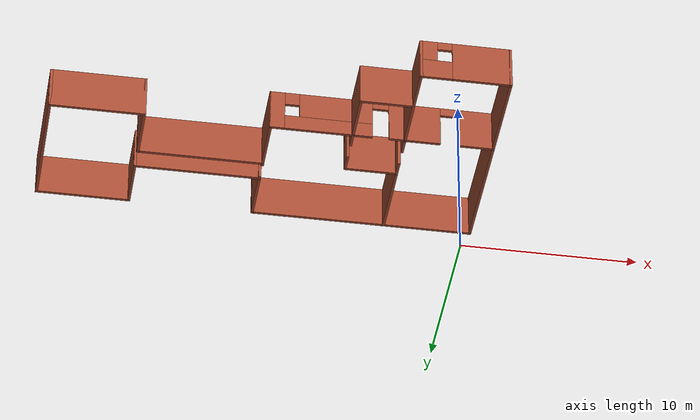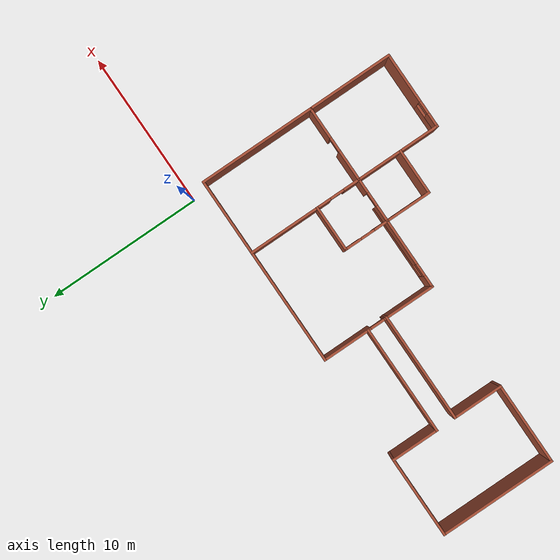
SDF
<?xml version='1.0'?>
<sdf version='1.6'>
  <model name='House3'>
    <pose frame=''>-11.7575 -7.45 0 0 -0 0</pose>
    <link name='Wall_0'>
      <collision name='Wall_0_Collision'>
        <geometry>
          <box>
            <size>7.5 0.15 2.5</size>
          </box>
        </geometry>
        <pose frame=''>0 0 1.25 0 -0 0</pose>
      </collision>
      <visual name='Wall_0_Visual'>
        <pose frame=''>0 0 1.25 0 -0 0</pose>
        <geometry>
          <box>
            <size>7.5 0.15 2.5</size>
          </box>
        </geometry>
        <material>
          <script>
            <uri>file://media/materials/scripts/gazebo.material</uri>
            <name>Gazebo/Bricks</name>
          </script>
          <ambient>1 1 1 1</ambient>
        </material>
        <meta>
          <layer>0</layer>
        </meta>
      </visual>
      <pose frame=''>12.0775 2.675 0 0 -0 -1.5708</pose>
    </link>
    <link name='Wall_10'>
      <pose frame=''>3.55254 -1 0 0 -0 0</pose>
      <visual name='Wall_10_Visual_0'>
        <pose frame=''>-3.3325 0 1.25 0 -0 0</pose>
        <geometry>
          <box>
            <size>0.835 0.15 2.5</size>
          </box>
        </geometry>
        <material>
          <script>
            <uri>file://media/materials/scripts/gazebo.material</uri>
            <name>Gazebo/Bricks</name>
          </script>
          <ambient>1 1 1 1</ambient>
        </material>
        <meta>
          <layer>0</layer>
        </meta>
      </visual>
      <collision name='Wall_10_Collision_0'>
        <geometry>
          <box>
            <size>0.835 0.15 2.5</size>
          </box>
        </geometry>
        <pose frame=''>-3.3325 0 1.25 0 -0 0</pose>
      </collision>
      <visual name='Wall_10_Visual_1'>
        <pose frame=''>3.2675 0 1.25 0 -0 0</pose>
        <geometry>
          <box>
            <size>0.965 0.15 2.5</size>
          </box>
        </geometry>
        <material>
          <script>
            <uri>file://media/materials/scripts/gazebo.material</uri>
            <name>Gazebo/Bricks</name>
          </script>
          <ambient>1 1 1 1</ambient>
        </material>
        <meta>
          <layer>0</layer>
        </meta>
      </visual>
      <collision name='Wall_10_Collision_1'>
        <geometry>
          <box>
            <size>0.965 0.15 2.5</size>
          </box>
        </geometry>
        <pose frame=''>3.2675 0 1.25 0 -0 0</pose>
      </collision>
      <visual name='Wall_10_Visual_2'>
        <pose frame=''>-0.515 0 0.45 0 -0 0</pose>
        <geometry>
          <box>
            <size>4.8 0.15 0.9</size>
          </box>
        </geometry>
        <material>
          <script>
            <uri>file://media/materials/scripts/gazebo.material</uri>
            <name>Gazebo/Bricks</name>
          </script>
          <ambient>1 1 1 1</ambient>
        </material>
        <meta>
          <layer>0</layer>
        </meta>
      </visual>
      <collision name='Wall_10_Collision_2'>
        <geometry>
          <box>
            <size>4.8 0.15 0.9</size>
          </box>
        </geometry>
        <pose frame=''>-0.515 0 0.45 0 -0 0</pose>
      </collision>
      <visual name='Wall_10_Visual_3'>
        <pose frame=''>-0.115 0 1.7 0 -0 0</pose>
        <geometry>
          <box>
            <size>4 0.15 1.6</size>
          </box>
        </geometry>
        <material>
          <script>
            <uri>file://media/materials/scripts/gazebo.material</uri>
            <name>Gazebo/Bricks</name>
          </script>
          <ambient>1 1 1 1</ambient>
        </material>
        <meta>
          <layer>0</layer>
        </meta>
      </visual>
      <collision name='Wall_10_Collision_3'>
        <geometry>
          <box>
            <size>4 0.15 1.6</size>
          </box>
        </geometry>
        <pose frame=''>-0.115 0 1.7 0 -0 0</pose>
      </collision>
      <visual name='Wall_10_Visual_4'>
        <pose frame=''>-2.515 0 2.1 0 -0 0</pose>
        <geometry>
          <box>
            <size>0.8 0.15 0.8</size>
          </box>
        </geometry>
        <material>
          <script>
            <uri>file://media/materials/scripts/gazebo.material</uri>
            <name>Gazebo/Bricks</name>
          </script>
          <ambient>1 1 1 1</ambient>
        </material>
        <meta>
          <layer>0</layer>
        </meta>
      </visual>
      <collision name='Wall_10_Collision_4'>
        <geometry>
          <box>
            <size>0.8 0.15 0.8</size>
          </box>
        </geometry>
        <pose frame=''>-2.515 0 2.1 0 -0 0</pose>
      </collision>
      <visual name='Wall_10_Visual_5'>
        <pose frame=''>2.335 0 2.25 0 -0 0</pose>
        <geometry>
          <box>
            <size>0.9 0.15 0.5</size>
          </box>
        </geometry>
        <material>
          <script>
            <uri>file://media/materials/scripts/gazebo.material</uri>
            <name>Gazebo/Bricks</name>
          </script>
          <ambient>1 1 1 1</ambient>
        </material>
        <meta>
          <layer>0</layer>
        </meta>
      </visual>
      <collision name='Wall_10_Collision_5'>
        <geometry>
          <box>
            <size>0.9 0.15 0.5</size>
          </box>
        </geometry>
        <pose frame=''>2.335 0 2.25 0 -0 0</pose>
      </collision>
    </link>
    <link name='Wall_14'>
      <pose frame=''>7.22753 0.425 0 0 -0 1.5708</pose>
      <visual name='Wall_14_Visual_0'>
        <pose frame=''>-0.9425 0 1.25 0 -0 0</pose>
        <geometry>
          <box>
            <size>1.115 0.15 2.5</size>
          </box>
        </geometry>
        <material>
          <script>
            <uri>file://media/materials/scripts/gazebo.material</uri>
            <name>Gazebo/Bricks</name>
          </script>
          <ambient>1 1 1 1</ambient>
        </material>
        <meta>
          <layer>0</layer>
        </meta>
      </visual>
      <collision name='Wall_14_Collision_0'>
        <geometry>
          <box>
            <size>1.115 0.15 2.5</size>
          </box>
        </geometry>
        <pose frame=''>-0.9425 0 1.25 0 -0 0</pose>
      </collision>
      <visual name='Wall_14_Visual_1'>
        <pose frame=''>1.0075 0 1.25 0 -0 0</pose>
        <geometry>
          <box>
            <size>0.985 0.15 2.5</size>
          </box>
        </geometry>
        <material>
          <script>
            <uri>file://media/materials/scripts/gazebo.material</uri>
            <name>Gazebo/Bricks</name>
          </script>
          <ambient>1 1 1 1</ambient>
        </material>
        <meta>
          <layer>0</layer>
        </meta>
      </visual>
      <collision name='Wall_14_Collision_1'>
        <geometry>
          <box>
            <size>0.985 0.15 2.5</size>
          </box>
        </geometry>
        <pose frame=''>1.0075 0 1.25 0 -0 0</pose>
      </collision>
      <visual name='Wall_14_Visual_2'>
        <pose frame=''>0.065 0 2.25 0 -0 0</pose>
        <geometry>
          <box>
            <size>0.9 0.15 0.5</size>
          </box>
        </geometry>
        <material>
          <script>
            <uri>file://media/materials/scripts/gazebo.material</uri>
            <name>Gazebo/Bricks</name>
          </script>
          <ambient>1 1 1 1</ambient>
        </material>
        <meta>
          <layer>0</layer>
        </meta>
      </visual>
      <collision name='Wall_14_Collision_2'>
        <geometry>
          <box>
            <size>0.9 0.15 0.5</size>
          </box>
        </geometry>
        <pose frame=''>0.065 0 2.25 0 -0 0</pose>
      </collision>
    </link>
    <link name='Wall_17'>
      <collision name='Wall_17_Collision'>
        <geometry>
          <box>
            <size>3 0.15 2.5</size>
          </box>
        </geometry>
        <pose frame=''>0 0 1.25 0 -0 0</pose>
      </collision>
      <visual name='Wall_17_Visual'>
        <pose frame=''>0 0 1.25 0 -0 0</pose>
        <geometry>
          <box>
            <size>3 0.15 2.5</size>
          </box>
        </geometry>
        <material>
          <script>
            <uri>file://media/materials/scripts/gazebo.material</uri>
            <name>Gazebo/Bricks</name>
          </script>
          <ambient>1 1 1 1</ambient>
        </material>
        <meta>
          <layer>0</layer>
        </meta>
      </visual>
      <pose frame=''>5.80253 1.85 0 0 -0 3.14159</pose>
    </link>
    <link name='Wall_18'>
      <pose frame=''>4.37753 0.425 0 0 -0 -1.5708</pose>
      <visual name='Wall_18_Visual_0'>
        <pose frame=''>-0.9325 0 1.25 0 -0 0</pose>
        <geometry>
          <box>
            <size>1.135 0.15 2.5</size>
          </box>
        </geometry>
        <material>
          <script>
            <uri>file://media/materials/scripts/gazebo.material</uri>
            <name>Gazebo/Bricks</name>
          </script>
          <ambient>1 1 1 1</ambient>
        </material>
        <meta>
          <layer>0</layer>
        </meta>
      </visual>
      <collision name='Wall_18_Collision_0'>
        <geometry>
          <box>
            <size>1.135 0.15 2.5</size>
          </box>
        </geometry>
        <pose frame=''>-0.9325 0 1.25 0 -0 0</pose>
      </collision>
      <visual name='Wall_18_Visual_1'>
        <pose frame=''>1.0175 0 1.25 0 -0 0</pose>
        <geometry>
          <box>
            <size>0.965 0.15 2.5</size>
          </box>
        </geometry>
        <material>
          <script>
            <uri>file://media/materials/scripts/gazebo.material</uri>
            <name>Gazebo/Bricks</name>
          </script>
          <ambient>1 1 1 1</ambient>
        </material>
        <meta>
          <layer>0</layer>
        </meta>
      </visual>
      <collision name='Wall_18_Collision_1'>
        <geometry>
          <box>
            <size>0.965 0.15 2.5</size>
          </box>
        </geometry>
        <pose frame=''>1.0175 0 1.25 0 -0 0</pose>
      </collision>
      <visual name='Wall_18_Visual_2'>
        <pose frame=''>0.085 0 2.25 0 -0 0</pose>
        <geometry>
          <box>
            <size>0.9 0.15 0.5</size>
          </box>
        </geometry>
        <material>
          <script>
            <uri>file://media/materials/scripts/gazebo.material</uri>
            <name>Gazebo/Bricks</name>
          </script>
          <ambient>1 1 1 1</ambient>
        </material>
        <meta>
          <layer>0</layer>
        </meta>
      </visual>
      <collision name='Wall_18_Collision_2'>
        <geometry>
          <box>
            <size>0.9 0.15 0.5</size>
          </box>
        </geometry>
        <pose frame=''>0.085 0 2.25 0 -0 0</pose>
      </collision>
    </link>
    <link name='Wall_2'>
      <collision name='Wall_2_Collision'>
        <geometry>
          <box>
            <size>5.5 0.15 2.5</size>
          </box>
        </geometry>
        <pose frame=''>0 0 1.25 0 -0 0</pose>
      </collision>
      <visual name='Wall_2_Visual'>
        <pose frame=''>0 0 1.25 0 -0 0</pose>
        <geometry>
          <box>
            <size>5.5 0.15 2.5</size>
          </box>
        </geometry>
        <material>
          <script>
            <uri>file://media/materials/scripts/gazebo.material</uri>
            <name>Gazebo/Bricks</name>
          </script>
          <ambient>1 1 1 1</ambient>
        </material>
        <meta>
          <layer>0</layer>
        </meta>
      </visual>
      <pose frame=''>12.0775 -3.675 0 0 -0 -1.5708</pose>
    </link>
    <link name='Wall_20'>
      <collision name='Wall_20_Collision'>
        <geometry>
          <box>
            <size>3 0.15 2.5</size>
          </box>
        </geometry>
        <pose frame=''>0 0 1.25 0 -0 0</pose>
      </collision>
      <visual name='Wall_20_Visual'>
        <pose frame=''>0 0 1.25 0 -0 0</pose>
        <geometry>
          <box>
            <size>3 0.15 2.5</size>
          </box>
        </geometry>
        <material>
          <script>
            <uri>file://media/materials/scripts/gazebo.material</uri>
            <name>Gazebo/Bricks</name>
          </script>
          <ambient>1 1 1 1</ambient>
        </material>
        <meta>
          <layer>0</layer>
        </meta>
      </visual>
      <pose frame=''>4.37753 -2.425 0 0 -0 -1.5708</pose>
    </link>
    <link name='Wall_22'>
      <collision name='Wall_22_Collision'>
        <geometry>
          <box>
            <size>3 0.15 2.5</size>
          </box>
        </geometry>
        <pose frame=''>0 0 1.25 0 -0 0</pose>
      </collision>
      <visual name='Wall_22_Visual'>
        <pose frame=''>0 0 1.25 0 -0 0</pose>
        <geometry>
          <box>
            <size>3 0.15 2.5</size>
          </box>
        </geometry>
        <material>
          <script>
            <uri>file://media/materials/scripts/gazebo.material</uri>
            <name>Gazebo/Bricks</name>
          </script>
          <ambient>1 1 1 1</ambient>
        </material>
        <meta>
          <layer>0</layer>
        </meta>
      </visual>
      <pose frame=''>5.80253 -3.85 0 0 -0 0</pose>
    </link>
    <link name='Wall_23'>
      <collision name='Wall_23_Collision'>
        <geometry>
          <box>
            <size>3 0.15 2.5</size>
          </box>
        </geometry>
        <pose frame=''>0 0 1.25 0 -0 0</pose>
      </collision>
      <visual name='Wall_23_Visual'>
        <pose frame=''>0 0 1.25 0 -0 0</pose>
        <geometry>
          <box>
            <size>3 0.15 2.5</size>
          </box>
        </geometry>
        <material>
          <script>
            <uri>file://media/materials/scripts/gazebo.material</uri>
            <name>Gazebo/Bricks</name>
          </script>
          <ambient>1 1 1 1</ambient>
        </material>
        <meta>
          <layer>0</layer>
        </meta>
      </visual>
      <pose frame=''>7.22753 -2.425 0 0 -0 1.5708</pose>
    </link>
    <link name='Wall_25'>
      <collision name='Wall_25_Collision'>
        <geometry>
          <box>
            <size>4.65 0.15 2.5</size>
          </box>
        </geometry>
        <pose frame=''>0 0 1.25 0 -0 0</pose>
      </collision>
      <visual name='Wall_25_Visual'>
        <pose frame=''>0 0 1.25 0 -0 0</pose>
        <geometry>
          <box>
            <size>4.65 0.15 2.5</size>
          </box>
        </geometry>
        <material>
          <script>
            <uri>file://media/materials/scripts/gazebo.material</uri>
            <name>Gazebo/Bricks</name>
          </script>
          <ambient>1 1 1 1</ambient>
        </material>
        <meta>
          <layer>0</layer>
        </meta>
      </visual>
      <pose frame=''>7.22753 4.1 0 0 -0 1.5708</pose>
    </link>
    <link name='Wall_29'>
      <pose frame=''>9.65254 -6.35 0 0 -0 3.14159</pose>
      <visual name='Wall_29_Visual_0'>
        <pose frame=''>-0.8825 0 1.25 0 -0 0</pose>
        <geometry>
          <box>
            <size>3.235 0.15 2.5</size>
          </box>
        </geometry>
        <material>
          <script>
            <uri>file://media/materials/scripts/gazebo.material</uri>
            <name>Gazebo/Bricks</name>
          </script>
          <ambient>1 1 1 1</ambient>
        </material>
        <meta>
          <layer>0</layer>
        </meta>
      </visual>
      <collision name='Wall_29_Collision_0'>
        <geometry>
          <box>
            <size>3.235 0.15 2.5</size>
          </box>
        </geometry>
        <pose frame=''>-0.8825 0 1.25 0 -0 0</pose>
      </collision>
      <visual name='Wall_29_Visual_1'>
        <pose frame=''>1.6175 0 0.6 0 -0 0</pose>
        <geometry>
          <box>
            <size>1.765 0.15 1.2</size>
          </box>
        </geometry>
        <material>
          <script>
            <uri>file://media/materials/scripts/gazebo.material</uri>
            <name>Gazebo/Bricks</name>
          </script>
          <ambient>1 1 1 1</ambient>
        </material>
        <meta>
          <layer>0</layer>
        </meta>
      </visual>
      <collision name='Wall_29_Collision_1'>
        <geometry>
          <box>
            <size>1.765 0.15 1.2</size>
          </box>
        </geometry>
        <pose frame=''>1.6175 0 0.6 0 -0 0</pose>
      </collision>
      <visual name='Wall_29_Visual_2'>
        <pose frame=''>2.0175 0 1.85 0 -0 0</pose>
        <geometry>
          <box>
            <size>0.965 0.15 1.3</size>
          </box>
        </geometry>
        <material>
          <script>
            <uri>file://media/materials/scripts/gazebo.material</uri>
            <name>Gazebo/Bricks</name>
          </script>
          <ambient>1 1 1 1</ambient>
        </material>
        <meta>
          <layer>0</layer>
        </meta>
      </visual>
      <collision name='Wall_29_Collision_2'>
        <geometry>
          <box>
            <size>0.965 0.15 1.3</size>
          </box>
        </geometry>
        <pose frame=''>2.0175 0 1.85 0 -0 0</pose>
      </collision>
      <visual name='Wall_29_Visual_3'>
        <pose frame=''>1.135 0 2.25 0 -0 0</pose>
        <geometry>
          <box>
            <size>0.8 0.15 0.5</size>
          </box>
        </geometry>
        <material>
          <script>
            <uri>file://media/materials/scripts/gazebo.material</uri>
            <name>Gazebo/Bricks</name>
          </script>
          <ambient>1 1 1 1</ambient>
        </material>
        <meta>
          <layer>0</layer>
        </meta>
      </visual>
      <collision name='Wall_29_Collision_3'>
        <geometry>
          <box>
            <size>0.8 0.15 0.5</size>
          </box>
        </geometry>
        <pose frame=''>1.135 0 2.25 0 -0 0</pose>
      </collision>
    </link>
    <link name='Wall_32'>
      <collision name='Wall_32_Collision'>
        <geometry>
          <box>
            <size>2.65 0.15 2.5</size>
          </box>
        </geometry>
        <pose frame=''>0 0 1.25 0 -0 0</pose>
      </collision>
      <visual name='Wall_32_Visual'>
        <pose frame=''>0 0 1.25 0 -0 0</pose>
        <geometry>
          <box>
            <size>2.65 0.15 2.5</size>
          </box>
        </geometry>
        <material>
          <script>
            <uri>file://media/materials/scripts/gazebo.material</uri>
            <name>Gazebo/Bricks</name>
          </script>
          <ambient>1 1 1 1</ambient>
        </material>
        <meta>
          <layer>0</layer>
        </meta>
      </visual>
      <pose frame=''>7.22753 -5.1 0 0 -0 1.5708</pose>
    </link>
    <link name='Wall_35'>
      <pose frame=''>9.65254 -1 0 0 -0 0</pose>
      <visual name='Wall_35_Visual_0'>
        <pose frame=''>-1.48755 0 1.25 0 -0 0</pose>
        <geometry>
          <box>
            <size>2.02489 0.15 2.5</size>
          </box>
        </geometry>
        <material>
          <script>
            <uri>file://media/materials/scripts/gazebo.material</uri>
            <name>Gazebo/Bricks</name>
          </script>
          <ambient>1 1 1 1</ambient>
        </material>
        <meta>
          <layer>0</layer>
        </meta>
      </visual>
      <collision name='Wall_35_Collision_0'>
        <geometry>
          <box>
            <size>2.02489 0.15 2.5</size>
          </box>
        </geometry>
        <pose frame=''>-1.48755 0 1.25 0 -0 0</pose>
      </collision>
      <visual name='Wall_35_Visual_1'>
        <pose frame=''>1.46245 0 1.25 0 -0 0</pose>
        <geometry>
          <box>
            <size>2.07511 0.15 2.5</size>
          </box>
        </geometry>
        <material>
          <script>
            <uri>file://media/materials/scripts/gazebo.material</uri>
            <name>Gazebo/Bricks</name>
          </script>
          <ambient>1 1 1 1</ambient>
        </material>
        <meta>
          <layer>0</layer>
        </meta>
      </visual>
      <collision name='Wall_35_Collision_1'>
        <geometry>
          <box>
            <size>2.07511 0.15 2.5</size>
          </box>
        </geometry>
        <pose frame=''>1.46245 0 1.25 0 -0 0</pose>
      </collision>
      <visual name='Wall_35_Visual_2'>
        <pose frame=''>-0.025107 0 2.25 0 -0 0</pose>
        <geometry>
          <box>
            <size>0.9 0.15 0.5</size>
          </box>
        </geometry>
        <material>
          <script>
            <uri>file://media/materials/scripts/gazebo.material</uri>
            <name>Gazebo/Bricks</name>
          </script>
          <ambient>1 1 1 1</ambient>
        </material>
        <meta>
          <layer>0</layer>
        </meta>
      </visual>
      <collision name='Wall_35_Collision_2'>
        <geometry>
          <box>
            <size>0.9 0.15 0.5</size>
          </box>
        </geometry>
        <pose frame=''>-0.025107 0 2.25 0 -0 0</pose>
      </collision>
    </link>
    <link name='Wall_37'>
      <collision name='Wall_37_Collision'>
        <geometry>
          <box>
            <size>7 0.15 2.5</size>
          </box>
        </geometry>
        <pose frame=''>0 0 1.25 0 -0 0</pose>
      </collision>
      <visual name='Wall_37_Visual'>
        <pose frame=''>0 0 1.25 0 -0 0</pose>
        <geometry>
          <box>
            <size>7 0.15 2.5</size>
          </box>
        </geometry>
        <material>
          <script>
            <uri>file://media/materials/scripts/gazebo.material</uri>
            <name>Gazebo/Bricks</name>
          </script>
          <ambient>1 1 1 1</ambient>
        </material>
        <meta>
          <layer>0</layer>
        </meta>
      </visual>
      <pose frame=''>-3.55247 3.379 0 0 -0 3.14159</pose>
    </link>
    <link name='Wall_39'>
      <collision name='Wall_39_Collision'>
        <geometry>
          <box>
            <size>7 0.15 2.5</size>
          </box>
        </geometry>
        <pose frame=''>0 0 1.25 0 -0 0</pose>
      </collision>
      <visual name='Wall_39_Visual'>
        <pose frame=''>0 0 1.25 0 -0 0</pose>
        <geometry>
          <box>
            <size>7 0.15 2.5</size>
          </box>
        </geometry>
        <material>
          <script>
            <uri>file://media/materials/scripts/gazebo.material</uri>
            <name>Gazebo/Bricks</name>
          </script>
          <ambient>1 1 1 1</ambient>
        </material>
        <meta>
          <layer>0</layer>
        </meta>
      </visual>
      <pose frame=''>-3.53946 2.117 0 0 -0 3.14159</pose>
    </link>
    <link name='Wall_4'>
      <collision name='Wall_4_Collision'>
        <geometry>
          <box>
            <size>5 0.15 2.5</size>
          </box>
        </geometry>
        <pose frame=''>0 0 1.25 0 -0 0</pose>
      </collision>
      <visual name='Wall_4_Visual'>
        <pose frame=''>0 0 1.25 0 -0 0</pose>
        <geometry>
          <box>
            <size>5 0.15 2.5</size>
          </box>
        </geometry>
        <material>
          <script>
            <uri>file://media/materials/scripts/gazebo.material</uri>
            <name>Gazebo/Bricks</name>
          </script>
          <ambient>1 1 1 1</ambient>
        </material>
        <meta>
          <layer>0</layer>
        </meta>
      </visual>
      <pose frame=''>9.65254 6.35 0 0 -0 3.14159</pose>
    </link>
    <link name='Wall_41'>
      <collision name='Wall_41_Collision'>
        <geometry>
          <box>
            <size>3.121 0.15 2.5</size>
          </box>
        </geometry>
        <pose frame=''>0 0 1.25 0 -0 0</pose>
      </collision>
      <visual name='Wall_41_Visual'>
        <pose frame=''>0 0 1.25 0 -0 0</pose>
        <geometry>
          <box>
            <size>3.121 0.15 2.5</size>
          </box>
        </geometry>
        <material>
          <script>
            <uri>file://media/materials/scripts/gazebo.material</uri>
            <name>Gazebo/Bricks</name>
          </script>
          <ambient>1 1 1 1</ambient>
        </material>
        <meta>
          <layer>0</layer>
        </meta>
      </visual>
      <pose frame=''>-6.97747 4.8645 0 0 -0 1.5708</pose>
    </link>
    <link name='Wall_44'>
      <collision name='Wall_44_Collision'>
        <geometry>
          <box>
            <size>3.267 0.15 2.5</size>
          </box>
        </geometry>
        <pose frame=''>0 0 1.25 0 -0 0</pose>
      </collision>
      <visual name='Wall_44_Visual'>
        <pose frame=''>0 0 1.25 0 -0 0</pose>
        <geometry>
          <box>
            <size>3.267 0.15 2.5</size>
          </box>
        </geometry>
        <material>
          <script>
            <uri>file://media/materials/scripts/gazebo.material</uri>
            <name>Gazebo/Bricks</name>
          </script>
          <ambient>1 1 1 1</ambient>
        </material>
        <meta>
          <layer>0</layer>
        </meta>
      </visual>
      <pose frame=''>-6.96446 0.5585 0 0 -0 -1.5708</pose>
    </link>
    <link name='Wall_46'>
      <collision name='Wall_46_Collision'>
        <geometry>
          <box>
            <size>5.25 0.15 2.5</size>
          </box>
        </geometry>
        <pose frame=''>0 0 1.25 0 -0 0</pose>
      </collision>
      <visual name='Wall_46_Visual'>
        <pose frame=''>0 0 1.25 0 -0 0</pose>
        <geometry>
          <box>
            <size>5.25 0.15 2.5</size>
          </box>
        </geometry>
        <material>
          <script>
            <uri>file://media/materials/scripts/gazebo.material</uri>
            <name>Gazebo/Bricks</name>
          </script>
          <ambient>1 1 1 1</ambient>
        </material>
        <meta>
          <layer>0</layer>
        </meta>
      </visual>
      <pose frame=''>-9.52746 6.35 0 0 -0 3.14159</pose>
    </link>
    <link name='Wall_47'>
      <collision name='Wall_47_Collision'>
        <geometry>
          <box>
            <size>7.5 0.15 2.5</size>
          </box>
        </geometry>
        <pose frame=''>0 0 1.25 0 -0 0</pose>
      </collision>
      <visual name='Wall_47_Visual'>
        <pose frame=''>0 0 1.25 0 -0 0</pose>
        <geometry>
          <box>
            <size>7.5 0.15 2.5</size>
          </box>
        </geometry>
        <material>
          <script>
            <uri>file://media/materials/scripts/gazebo.material</uri>
            <name>Gazebo/Bricks</name>
          </script>
          <ambient>1 1 1 1</ambient>
        </material>
        <meta>
          <layer>0</layer>
        </meta>
      </visual>
      <pose frame=''>-12.0775 2.675 0 0 -0 -1.5708</pose>
    </link>
    <link name='Wall_48'>
      <collision name='Wall_48_Collision'>
        <geometry>
          <box>
            <size>5.26314 0.15 2.5</size>
          </box>
        </geometry>
        <pose frame=''>0 0 1.25 0 -0 0</pose>
      </collision>
      <visual name='Wall_48_Visual'>
        <pose frame=''>0 0 1.25 0 -0 0</pose>
        <geometry>
          <box>
            <size>5.26314 0.15 2.5</size>
          </box>
        </geometry>
        <material>
          <script>
            <uri>file://media/materials/scripts/gazebo.material</uri>
            <name>Gazebo/Bricks</name>
          </script>
          <ambient>1 1 1 1</ambient>
        </material>
        <meta>
          <layer>0</layer>
        </meta>
      </visual>
      <pose frame=''>-9.52097 -1 0 0 -0 0</pose>
    </link>
    <link name='Wall_6'>
      <collision name='Wall_6_Collision'>
        <geometry>
          <box>
            <size>7.5 0.15 2.5</size>
          </box>
        </geometry>
        <pose frame=''>0 0 1.25 0 -0 0</pose>
      </collision>
      <visual name='Wall_6_Visual'>
        <pose frame=''>0 0 1.25 0 -0 0</pose>
        <geometry>
          <box>
            <size>7.5 0.15 2.5</size>
          </box>
        </geometry>
        <material>
          <script>
            <uri>file://media/materials/scripts/gazebo.material</uri>
            <name>Gazebo/Bricks</name>
          </script>
          <ambient>1 1 1 1</ambient>
        </material>
        <meta>
          <layer>0</layer>
        </meta>
      </visual>
      <pose frame=''>3.55254 6.35 0 0 -0 3.14159</pose>
    </link>
    <link name='Wall_8'>
      <pose frame=''>-0.122465 2.675 0 0 -0 -1.5708</pose>
      <visual name='Wall_8_Visual_0'>
        <pose frame=''>-2.13651 0 1.25 0 -0 0</pose>
        <geometry>
          <box>
            <size>3.22699 0.15 2.5</size>
          </box>
        </geometry>
        <material>
          <script>
            <uri>file://media/materials/scripts/gazebo.material</uri>
            <name>Gazebo/Bricks</name>
          </script>
          <ambient>1 1 1 1</ambient>
        </material>
        <meta>
          <layer>0</layer>
        </meta>
      </visual>
      <collision name='Wall_8_Collision_0'>
        <geometry>
          <box>
            <size>3.22699 0.15 2.5</size>
          </box>
        </geometry>
        <pose frame=''>-2.13651 0 1.25 0 -0 0</pose>
      </collision>
      <visual name='Wall_8_Visual_1'>
        <pose frame=''>2.0635 0 1.25 0 -0 0</pose>
        <geometry>
          <box>
            <size>3.37301 0.15 2.5</size>
          </box>
        </geometry>
        <material>
          <script>
            <uri>file://media/materials/scripts/gazebo.material</uri>
            <name>Gazebo/Bricks</name>
          </script>
          <ambient>1 1 1 1</ambient>
        </material>
        <meta>
          <layer>0</layer>
        </meta>
      </visual>
      <collision name='Wall_8_Collision_1'>
        <geometry>
          <box>
            <size>3.37301 0.15 2.5</size>
          </box>
        </geometry>
        <pose frame=''>2.0635 0 1.25 0 -0 0</pose>
      </collision>
      <visual name='Wall_8_Visual_2'>
        <pose frame=''>-0.073011 0 2.25 0 -0 0</pose>
        <geometry>
          <box>
            <size>0.9 0.15 0.5</size>
          </box>
        </geometry>
        <material>
          <script>
            <uri>file://media/materials/scripts/gazebo.material</uri>
            <name>Gazebo/Bricks</name>
          </script>
          <ambient>1 1 1 1</ambient>
        </material>
        <meta>
          <layer>0</layer>
        </meta>
      </visual>
      <collision name='Wall_8_Collision_2'>
        <geometry>
          <box>
            <size>0.9 0.15 0.5</size>
          </box>
        </geometry>
        <pose frame=''>-0.073011 0 2.25 0 -0 0</pose>
      </collision>
    </link>
    <static>1</static>
  </model>
</sdf>
